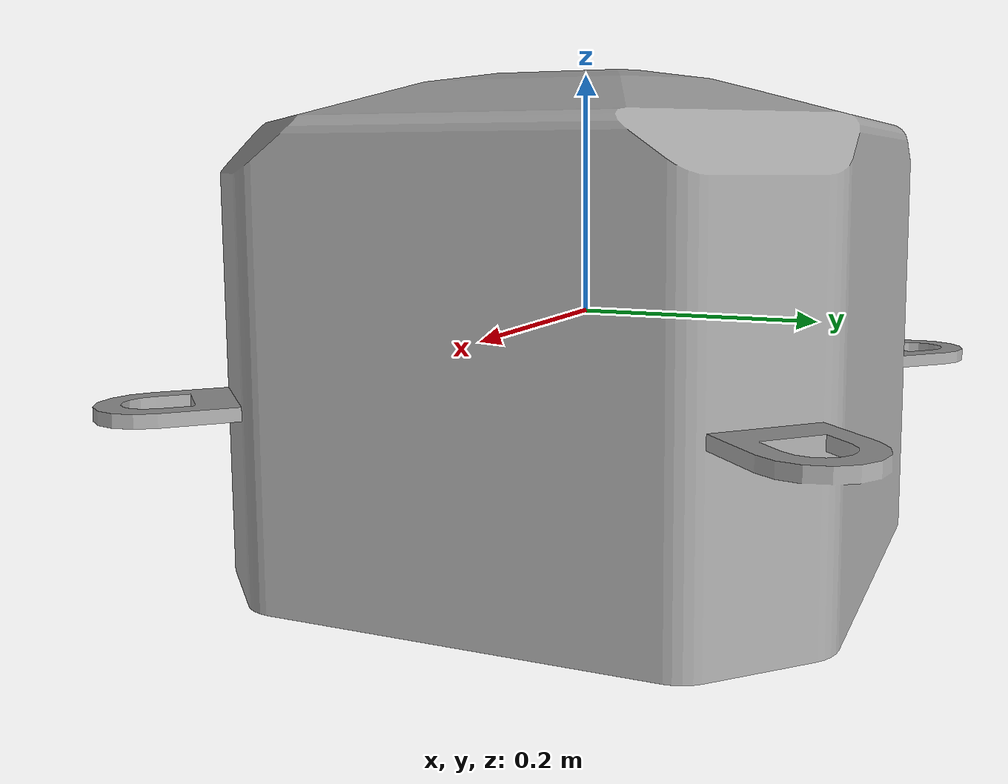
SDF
<?xml version="1.0"?>
<sdf version="1.5">
  <model name="dock_block">
    <static>false</static>
    <link name="link">
       <velocity_decay>
        <linear>0.001</linear>
        <angular>0.001</angular>
      </velocity_decay>
      <inertial>
        <pose>0 0 -2 0 0 0</pose>
        <mass>10</mass>
        <inertia>
          <ixx>2.5137</ixx>
          <ixy>0</ixy>
          <ixz>0</ixz>
          <iyy>2.5137</iyy>
          <iyz>0</iyz>
          <izz>0.5386</izz>
        </inertia>
      </inertial>
      <collision name="collision">
        <pose>0 0 0 0 0 0</pose>
        <geometry>
          <box>
            <size>0.5 0.5 0.4</size>
          </box>
        </geometry>
      </collision>
      <visual name="visual">
        <pose> 0 0 0.2 0 0 0 </pose>
        <geometry>
          <mesh>
            <uri>file://dock_block/mesh/dock_block.dae</uri>
          </mesh>
        </geometry>
      </visual>
    </link>
    <plugin name="BuoyancyPlugin" filename="libbuoyancy_gazebo_plugin.so">
      <wave_model>ocean_waves</wave_model>
      <fluid_density>1000</fluid_density>
      <fluid_level>0</fluid_level>
      <linear_drag>1000.0</linear_drag>
      <angular_drag>200.0</angular_drag>
      <buoyancy name="buoyancy_base">
        <link_name>link</link_name>
      	<pose>0 0 -0.2 0 0 0</pose>
        <geometry>
          <sphere>
	    <radius>0.28794119114848615</radius>
	  </sphere>
        </geometry>
      </buoyancy>
    </plugin>
  </model>
</sdf>
